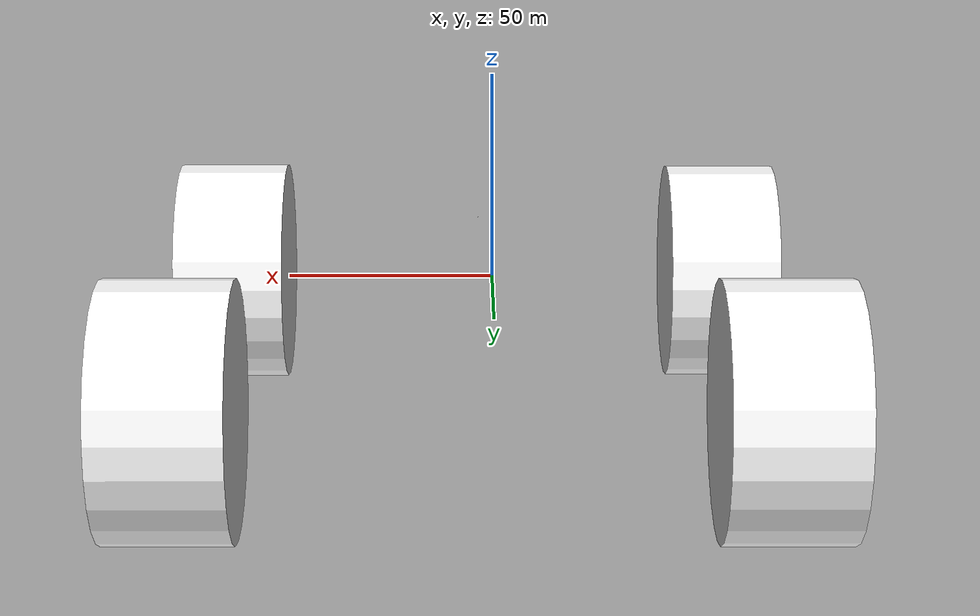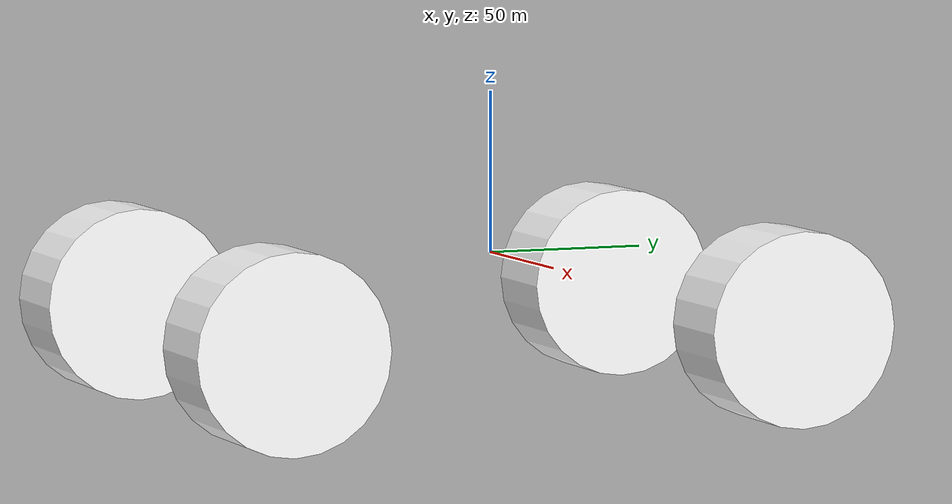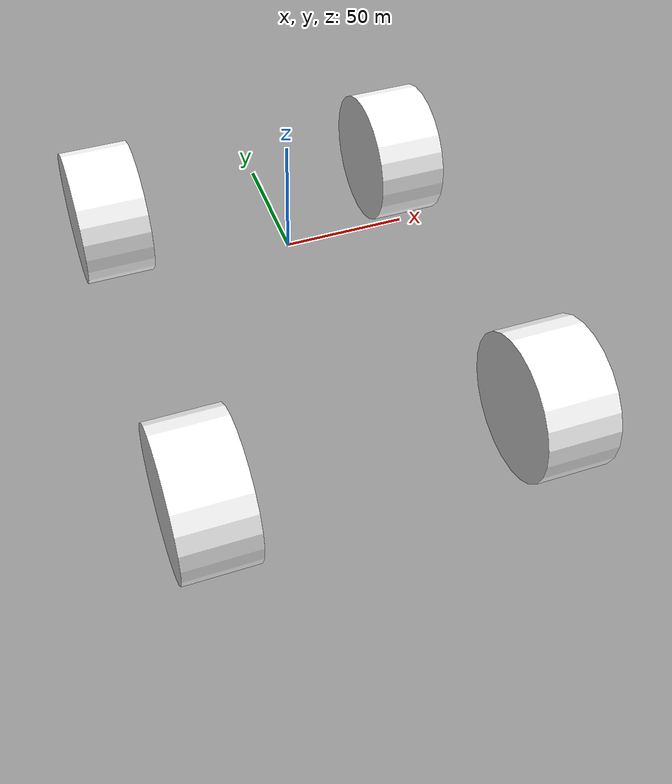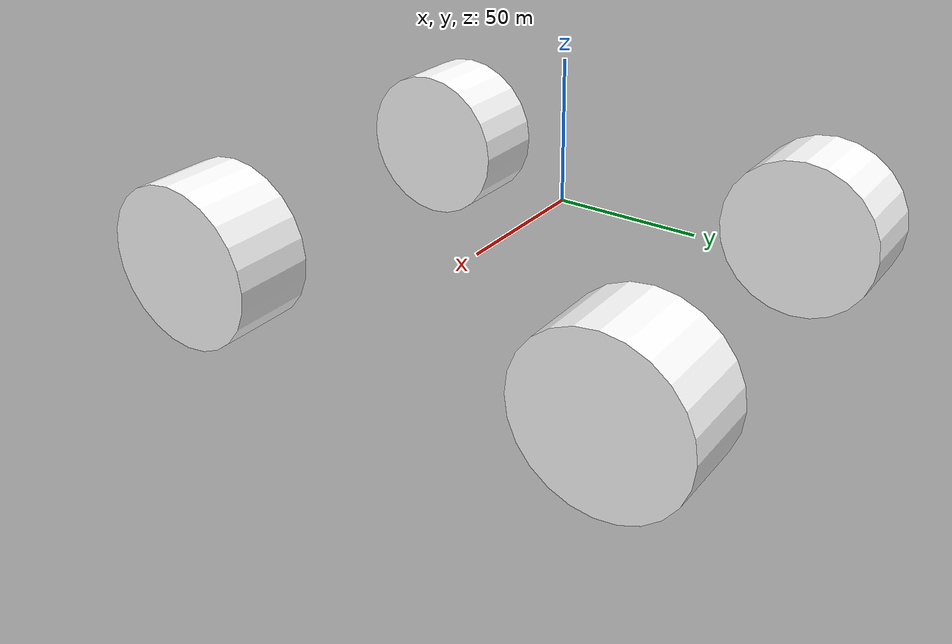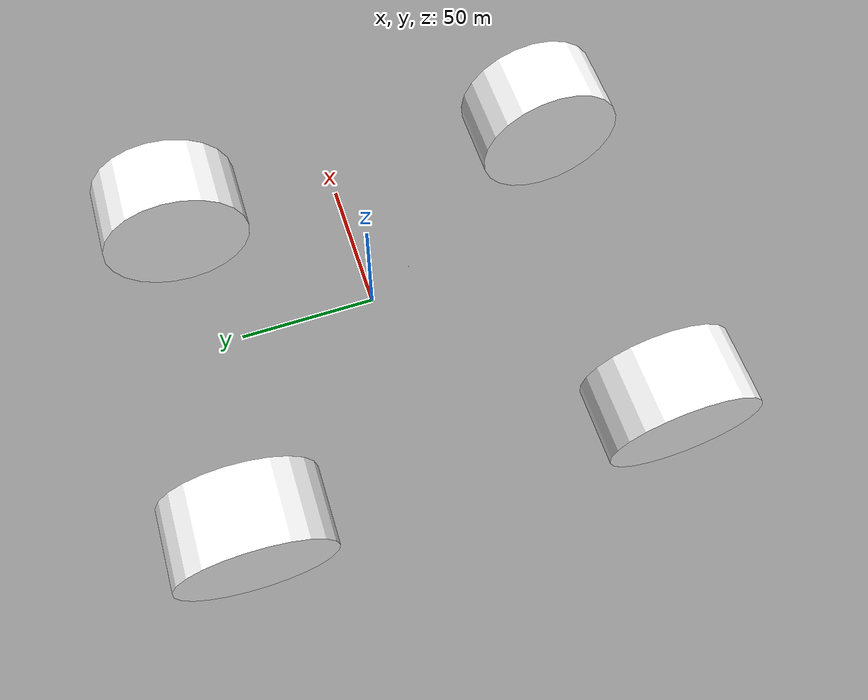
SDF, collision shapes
<?xml version="1.0"?>
<sdf version="1.7">
  <model name="car_like_rover">
    <static>false</static>
    <allow_auto_disable>true</allow_auto_disable>

    <link name="base_link">
      <pose>0 0 0 0 0 0</pose>
      <inertial>
        <pose>3.489538 -15.733987 12.140261 0.000000 0.000000 0.000000</pose>
        <mass>15.000000</mass>
        <inertia>
          <ixx>0.078520</ixx><ixy>0</ixy><ixz>0</ixz>
          <iyy>0.053290</iyy><iyz>0</iyz><izz>0.102337</izz>
        </inertia>
      </inertial>

      <visual name="base_visual">
        <geometry>
          <mesh><uri>model://car_like_rover/meshes/base_link.dae</uri></mesh>
        </geometry>

        <material>
          <ambient>1.000000 1.000000 1.000000 1</ambient>
          <diffuse>1.000000 1.000000 1.000000 1</diffuse>
          <emissive>0.060000 0.060000 0.060000 1</emissive>
        </material>
      </visual>

      <collision name="base_box_col">
        <pose>3.489538 -15.733987 12.140261 0.000000 0.000000 0.000000</pose>
        <geometry><box><size>0.175621 0.225891 0.108579</size></box></geometry>
        <surface>
          <friction><ode mu="0.9" mu2="0.9"/></friction>
          <contact><ode kp="300000.0" kd="2.0"/></contact>
        </surface>
      </collision>
    </link>

    <link name="wheel1">
      <pose relative_to="base_link">72.524269 66.228279 -17.634537 0.000000 0.000000 0.000000</pose>
      <inertial>
        <mass>58931807.127458</mass>
        <inertia>
          <ixx>26386882387.026886</ixx><ixy>0</ixy><ixz>0</ixz>
          <iyy>17591242142.729679</iyy><iyz>0</iyz><izz>17591242142.729679</izz>
        </inertia>
      </inertial>

      <visual name="wheel1_visual">
        <geometry>
          <mesh><uri>model://car_like_rover/meshes/wheel1.dae</uri></mesh>
        </geometry>

        <material>
          <ambient>1.000000 1.000000 1.000000 1</ambient>
          <diffuse>1.000000 1.000000 1.000000 1</diffuse>
          <emissive>0.060000 0.060000 0.060000 1</emissive>
        </material>
      </visual>

      <collision name="wheel1_col">
        <pose>0.000000 0.000000 0.000000 0.000000 1.570796 0.000000</pose>
        <geometry><cylinder><radius>29.925000</radius><length>29.924957</length></cylinder></geometry>
        <surface>
          <friction><ode mu="0.9" mu2="0.9"/></friction>
          <contact><ode kp="300000.0" kd="2.0"/></contact>
        </surface>
      </collision>
    </link>

    <link name="wheel2">
      <pose relative_to="base_link">-65.238960 66.356590 -17.634962 0.000000 0.000000 0.000000</pose>
      <inertial>
        <mass>59213016.221075</mass>
        <inertia>
          <ixx>26512804181.813148</ixx><ixy>0</ixy><ixz>0</ixz>
          <iyy>17717456585.952396</iyy><iyz>0</iyz><izz>17717456585.952396</izz>
        </inertia>
      </inertial>

      <visual name="wheel2_visual">
        <geometry>
          <mesh><uri>model://car_like_rover/meshes/wheel2.dae</uri></mesh>
        </geometry>

        <material>
          <ambient>1.000000 1.000000 1.000000 1</ambient>
          <diffuse>1.000000 1.000000 1.000000 1</diffuse>
          <emissive>0.060000 0.060000 0.060000 1</emissive>
        </material>
      </visual>

      <collision name="wheel2_col">
        <pose>0.000000 0.000000 0.000000 0.000000 1.570796 0.000000</pose>
        <geometry><cylinder><radius>29.925005</radius><length>30.067741</length></cylinder></geometry>
        <surface>
          <friction><ode mu="0.9" mu2="0.9"/></friction>
          <contact><ode kp="300000.0" kd="2.0"/></contact>
        </surface>
      </collision>
    </link>

    <link name="wheel3">
      <pose relative_to="base_link">-65.281685 -97.208298 -17.634962 0.000000 0.000000 0.000000</pose>
      <inertial>
        <mass>58931807.127458</mass>
        <inertia>
          <ixx>26386882387.026886</ixx><ixy>0</ixy><ixz>0</ixz>
          <iyy>17591242142.729679</iyy><iyz>0</iyz><izz>17591242142.729679</izz>
        </inertia>
      </inertial>

      <visual name="wheel3_visual">
        <geometry>
          <mesh><uri>model://car_like_rover/meshes/wheel3.dae</uri></mesh>
        </geometry>

        <material>
          <ambient>1.000000 1.000000 1.000000 1</ambient>
          <diffuse>1.000000 1.000000 1.000000 1</diffuse>
          <emissive>0.060000 0.060000 0.060000 1</emissive>
        </material>
      </visual>

      <collision name="wheel3_col">
        <pose>0.000000 0.000000 0.000000 0.000000 1.570796 0.000000</pose>
        <geometry><cylinder><radius>29.925000</radius><length>29.924957</length></cylinder></geometry>
        <surface>
          <friction><ode mu="0.9" mu2="0.9"/></friction>
          <contact><ode kp="300000.0" kd="2.0"/></contact>
        </surface>
      </collision>
    </link>

    <link name="wheel4">
      <pose relative_to="base_link">72.523224 -97.280998 -17.634954 0.000000 0.000000 0.000000</pose>
      <inertial>
        <mass>60403123.213646</mass>
        <inertia>
          <ixx>27658564225.886913</ixx><ixy>0</ixy><ixz>0</ixz>
          <iyy>18357221953.068550</iyy><iyz>0</iyz><izz>18357221953.068550</izz>
        </inertia>
      </inertial>

      <visual name="wheel4_visual">
        <geometry>
          <mesh><uri>model://car_like_rover/meshes/wheel4.dae</uri></mesh>
        </geometry>

        <material>
          <ambient>1.000000 1.000000 1.000000 1</ambient>
          <diffuse>1.000000 1.000000 1.000000 1</diffuse>
          <emissive>0.060000 0.060000 0.060000 1</emissive>
        </material>
      </visual>

      <collision name="wheel4_col">
        <pose>0.000000 0.000000 0.000000 0.000000 1.570796 0.000000</pose>
        <geometry><cylinder><radius>30.262173</radius><length>29.992402</length></cylinder></geometry>
        <surface>
          <friction><ode mu="0.9" mu2="0.9"/></friction>
          <contact><ode kp="300000.0" kd="2.0"/></contact>
        </surface>
      </collision>
    </link>

    <joint name="wheel1_joint" type="revolute">
      <parent>base_link</parent>
      <child>wheel1</child>
      <!-- ÂNCORA NO CENTRO DA RODA (NO FRAME DO base_link) -->
      <pose relative_to="base_link">72.524269 66.228279 -17.634537 0.000000 0.000000 0.000000</pose>
      <axis>
        <xyz>1 0 0</xyz>
        <dynamics><damping>0.2</damping></dynamics>
        <limit>
          <lower>-1e+16</lower>
          <upper> 1e+16</upper>
          <effort>50.0</effort>
          <velocity>120.0</velocity>
        </limit>
      </axis>
    </joint>

    <joint name="wheel2_joint" type="revolute">
      <parent>base_link</parent>
      <child>wheel2</child>
      <!-- ÂNCORA NO CENTRO DA RODA (NO FRAME DO base_link) -->
      <pose relative_to="base_link">-65.238960 66.356590 -17.634962 0.000000 0.000000 0.000000</pose>
      <axis>
        <xyz>1 0 0</xyz>
        <dynamics><damping>0.2</damping></dynamics>
        <limit>
          <lower>-1e+16</lower>
          <upper> 1e+16</upper>
          <effort>50.0</effort>
          <velocity>120.0</velocity>
        </limit>
      </axis>
    </joint>

    <joint name="wheel3_joint" type="revolute">
      <parent>base_link</parent>
      <child>wheel3</child>
      <!-- ÂNCORA NO CENTRO DA RODA (NO FRAME DO base_link) -->
      <pose relative_to="base_link">-65.281685 -97.208298 -17.634962 0.000000 0.000000 0.000000</pose>
      <axis>
        <xyz>1 0 0</xyz>
        <dynamics><damping>0.2</damping></dynamics>
        <limit>
          <lower>-1e+16</lower>
          <upper> 1e+16</upper>
          <effort>50.0</effort>
          <velocity>120.0</velocity>
        </limit>
      </axis>
    </joint>

    <joint name="wheel4_joint" type="revolute">
      <parent>base_link</parent>
      <child>wheel4</child>
      <!-- ÂNCORA NO CENTRO DA RODA (NO FRAME DO base_link) -->
      <pose relative_to="base_link">72.523224 -97.280998 -17.634954 0.000000 0.000000 0.000000</pose>
      <axis>
        <xyz>1 0 0</xyz>
        <dynamics><damping>0.2</damping></dynamics>
        <limit>
          <lower>-1e+16</lower>
          <upper> 1e+16</upper>
          <effort>50.0</effort>
          <velocity>120.0</velocity>
        </limit>
      </axis>
    </joint>

  </model>
</sdf>
